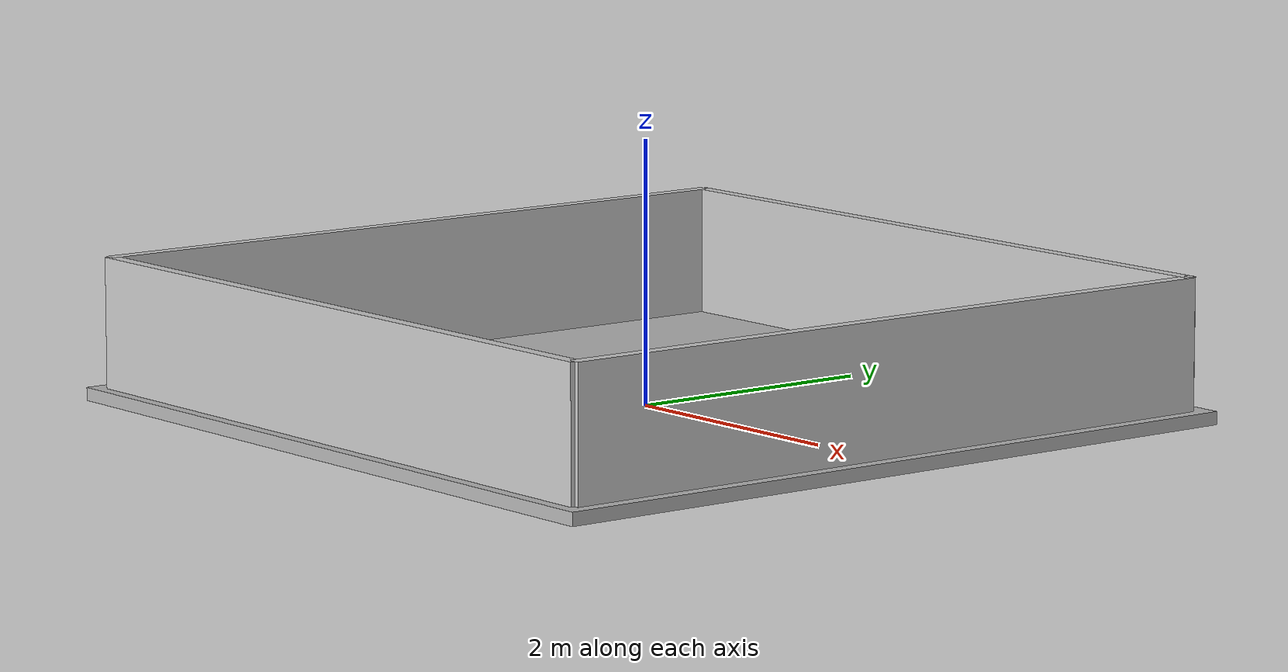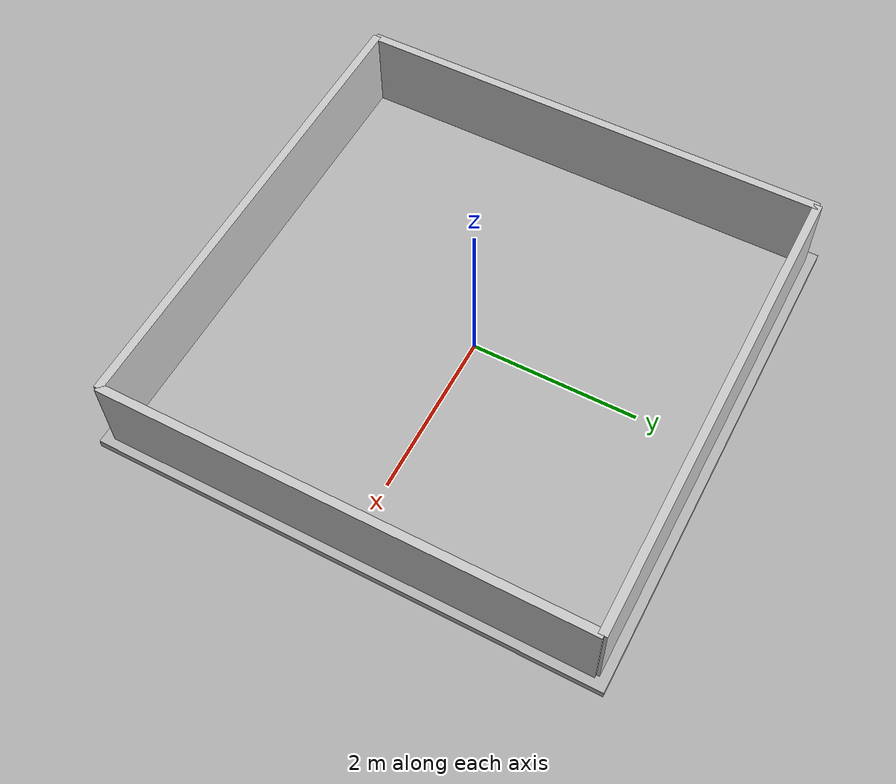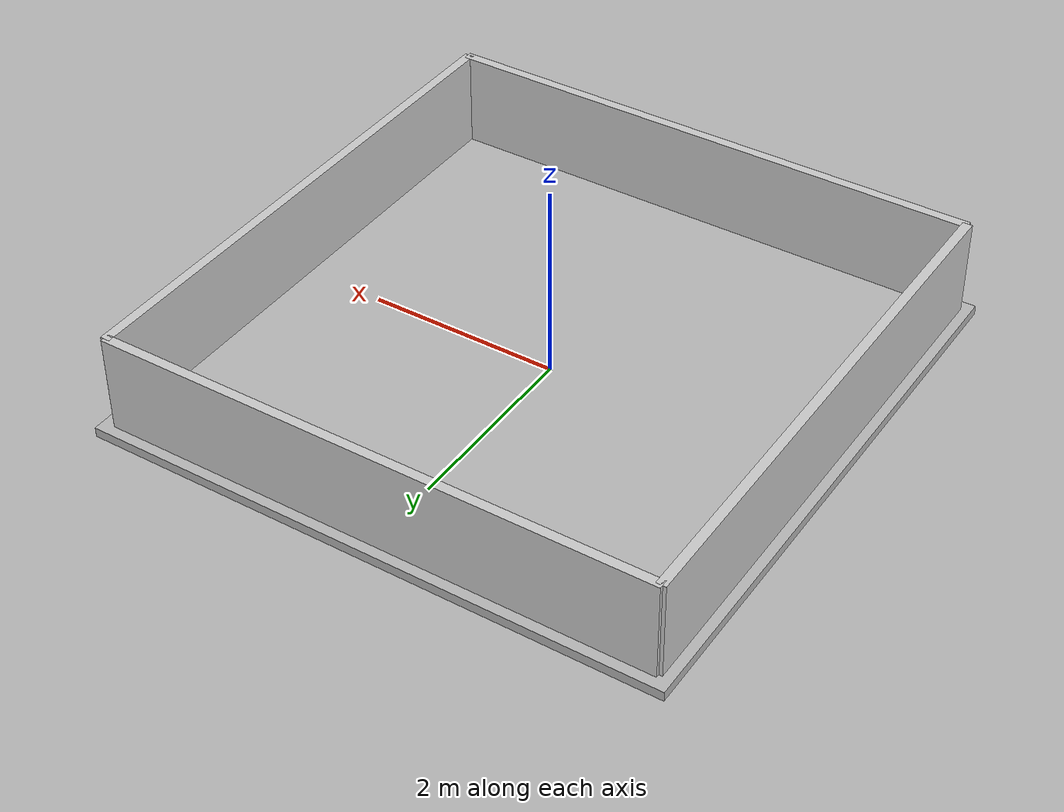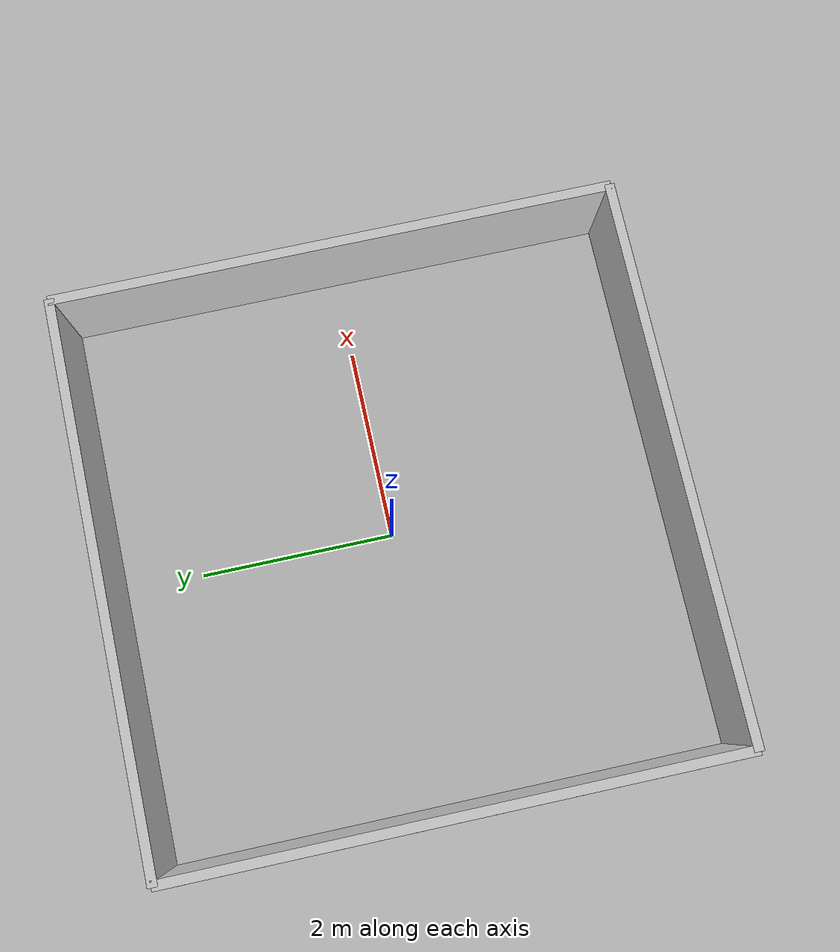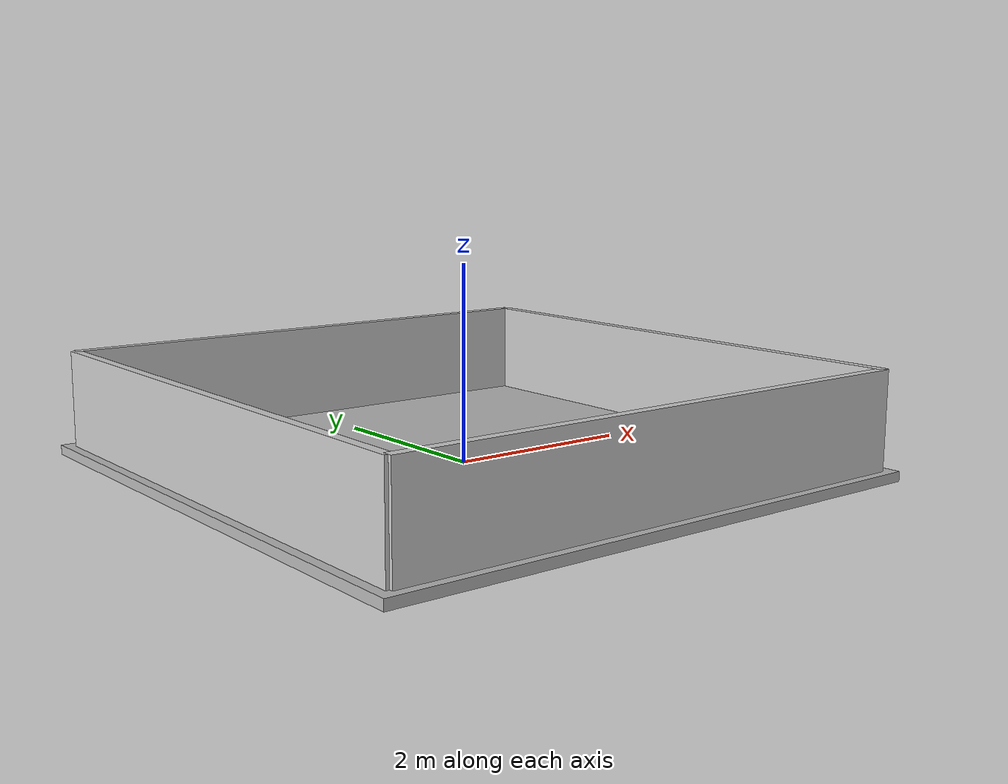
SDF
<?xml version="1.0" ?>
<sdf version="1.7">
  <model name="competition_ground">
    <static>true</static>

    <!-- 地图 地面 link -->
    <link name="link">
      <pose>0 0 0 0 0 0</pose>
      <collision name="collision">
        <geometry>
          <box><size>6.0 6.0 0.1</size></box>
        </geometry>
      </collision>
      <visual name="visual">
        <geometry>
          <box><size>6.0 6.0 0.1</size></box>
        </geometry>
        <material>
          <script>
            <uri>model://competition_ground/materials/scripts</uri>
            <uri>model://competition_ground/materials/textures</uri>
            <name>CompetitionGround/Ground</name>
          </script>
          <pbr>
            <metal>
              <albedo_map>model://competition_ground/materials/textures/map.png</albedo_map>
            </metal>
          </pbr>
        </material>
      </visual>
    </link>

    <!-- north -->
    <link name="north_wall">
      <pose>0.0005 2.8415 0.55 0 0 0</pose>
      <collision name="c">
        <geometry><box><size>5.7277 0.1000 1.0</size></box></geometry>
      </collision>
      <visual name="v">
        <geometry><box><size>5.7277 0.1000 1.0</size></box></geometry>
        <material>
          <ambient>0.7 0.7 0.7 1</ambient>
          <diffuse>0.8 0.8 0.8 1</diffuse>
          <specular>0.1 0.1 0.1 1</specular>
        </material>
      </visual>
    </link>

    <!-- south -->
    <link name="south_wall">
      <pose>0.0005 -2.8581 0.55 0 0 0</pose>
      <collision name="c">
        <geometry><box><size>5.7277 0.1000 1.0</size></box></geometry>
      </collision>
      <visual name="v">
        <geometry><box><size>5.7277 0.1000 1.0</size></box></geometry>
        <material>
          <ambient>0.7 0.7 0.7 1</ambient>
          <diffuse>0.8 0.8 0.8 1</diffuse>
          <specular>0.1 0.1 0.1 1</specular>
        </material>
      </visual>
    </link>

    <!-- west -->
    <link name="west_wall">
      <pose>-2.8485 -0.0088 0.55 0 0 0</pose>
      <collision name="c">
        <geometry><box><size>0.1000 5.7302 1.0</size></box></geometry>
      </collision>
      <visual name="v">
        <geometry><box><size>0.1000 5.7302 1.0</size></box></geometry>
        <material>
          <ambient>0.7 0.7 0.7 1</ambient>
          <diffuse>0.8 0.8 0.8 1</diffuse>
          <specular>0.1 0.1 0.1 1</specular>
        </material>
      </visual>
    </link>

    <!-- east -->
    <link name="east_wall">
      <pose>2.8485 -0.0088 0.55 0 0 0</pose>
      <collision name="c">
        <geometry><box><size>0.1000 5.7302 1.0</size></box></geometry>
      </collision>
      <visual name="v">
        <geometry><box><size>0.1000 5.7302 1.0</size></box></geometry>
        <material>
          <ambient>0.7 0.7 0.7 1</ambient>
          <diffuse>0.8 0.8 0.8 1</diffuse>
          <specular>0.1 0.1 0.1 1</specular>
        </material>
      </visual>
    </link>

  </model>
</sdf>
